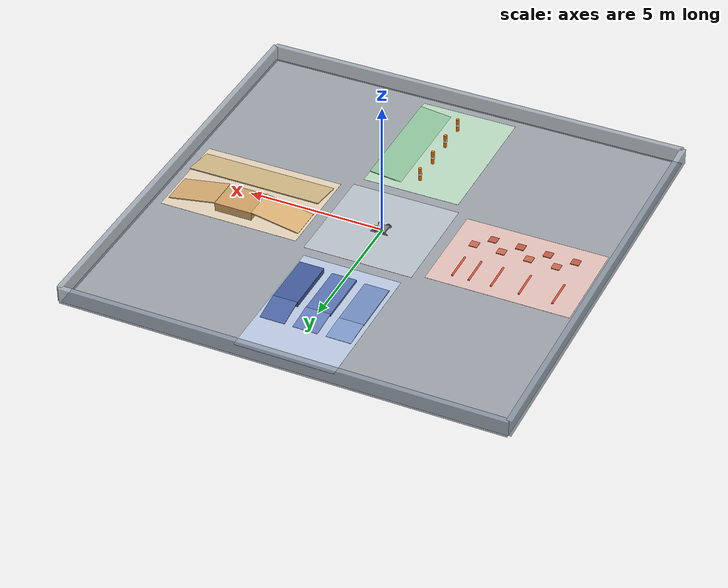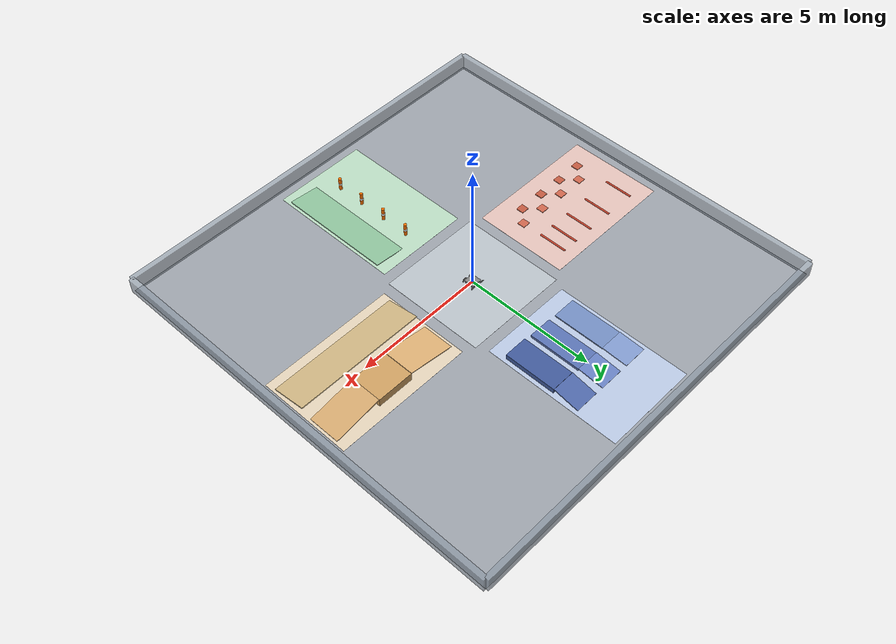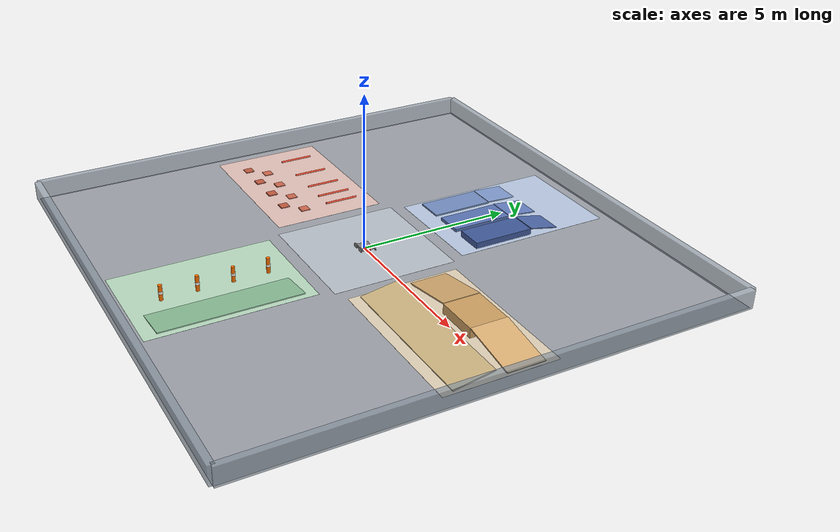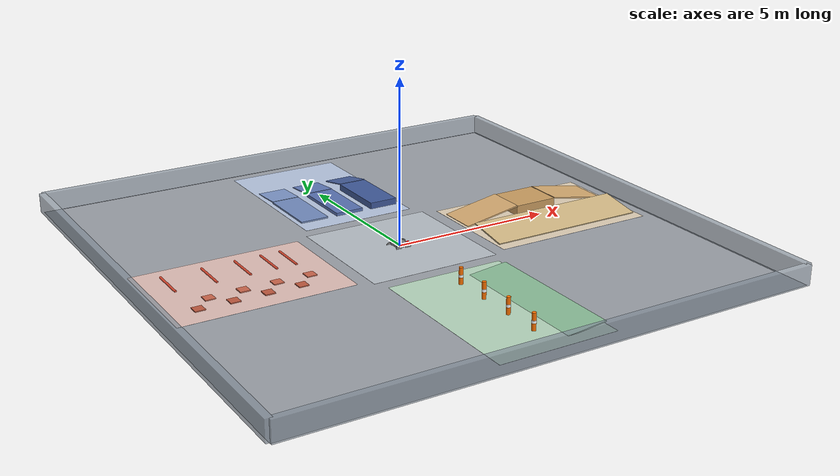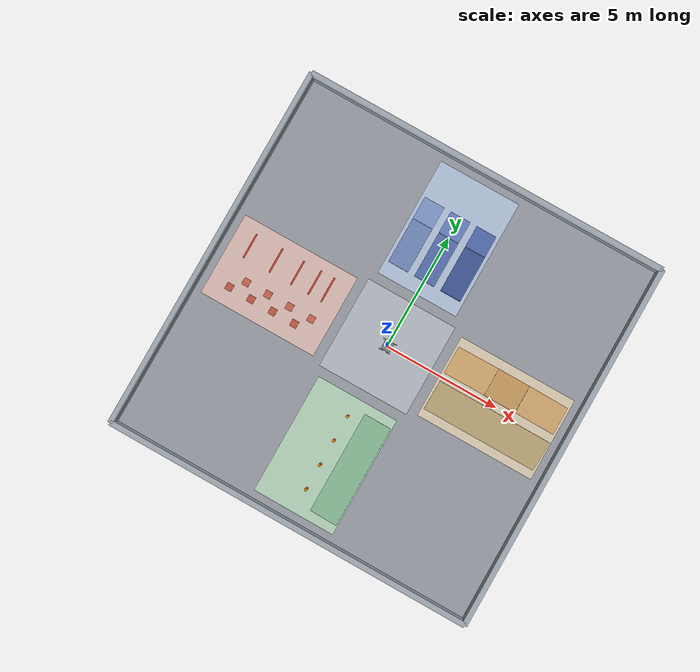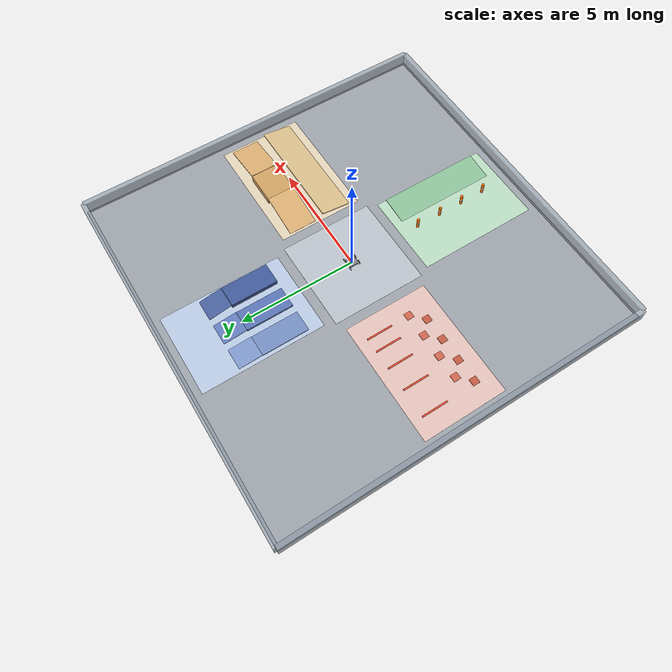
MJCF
<mujoco model="mobed_playground">
  <compiler angle="radian" eulerseq="xyz" autolimits="true" balanceinertia="true" boundinertia="1e-8" />

  <default>
    <joint armature="0.1" damping="1.0" />
  </default>

  <visual>
    <headlight ambient="0.12 0.12 0.12" diffuse="0.0 0.0 0.0" specular="0.0 0.0 0.0" />
    <quality shadowsize="4096" />
    <global offwidth="1920" offheight="1080" />
    <map shadowclip="0.5" shadowscale="0.8" />
    <rgba haze="0.15 0.25 0.35 1" />
  </visual>

  <asset>
    <mesh name="part_001_solid_001" file="meshes/part_001_solid_001.stl" scale="0.001 0.001 0.001" />
    <mesh name="part_002_solid_002" file="meshes/part_002_solid_002.stl" scale="0.001 0.001 0.001" />
    <mesh name="part_003_solid_003" file="meshes/part_003_solid_003.stl" scale="0.001 0.001 0.001" />
    <mesh name="part_004_solid_004" file="meshes/part_004_solid_004.stl" scale="0.001 0.001 0.001" />
    <mesh name="part_007_solid_007" file="meshes/part_007_solid_007.stl" scale="0.001 0.001 0.001" />
    <mesh name="part_010_solid_010" file="meshes/part_010_solid_010.stl" scale="0.001 0.001 0.001" />
    <mesh name="part_013_solid_013" file="meshes/part_013_solid_013.stl" scale="0.001 0.001 0.001" />
    <mesh name="part_005_solid_005" file="meshes/part_005_solid_005.stl" scale="0.001 0.001 0.001" />
    <mesh name="part_008_solid_008" file="meshes/part_008_solid_008.stl" scale="0.001 0.001 0.001" />
    <mesh name="part_011_solid_011" file="meshes/part_011_solid_011.stl" scale="0.001 0.001 0.001" />
    <mesh name="part_006_solid_006" file="meshes/part_006_solid_006.stl" scale="0.001 0.001 0.001" />
    <mesh name="part_009_solid_009" file="meshes/part_009_solid_009.stl" scale="0.001 0.001 0.001" />
    <mesh name="part_012_solid_012" file="meshes/part_012_solid_012.stl" scale="0.001 0.001 0.001" />

    <texture name="skybox" type="skybox" builtin="gradient" rgb1="0.35 0.55 0.75" rgb2="0.82 0.87 0.92" width="512" height="512" />
    <texture name="grid" type="2d" builtin="checker" width="512" height="512" rgb1="0.66 0.68 0.71" rgb2="0.56 0.58 0.61" />
    <material name="grid_mat" texture="grid" texrepeat="16 16" reflectance="0.08" specular="0.15" />
  </asset>

  <worldbody>
    <!-- Lighting: Studio-grade Natural Outdoor Setup -->
    <light name="sun" directional="true" pos="0 0 10" dir="0.4 0.6 -1.2" diffuse="0.68 0.68 0.65" specular="0.25 0.25 0.25" castshadow="true" />
    <light name="sky_fill" directional="true" pos="0 0 10" dir="-0.4 -0.5 -0.8" diffuse="0.24 0.26 0.30" specular="0.02 0.02 0.02" castshadow="false" />
    <light name="ground_bounce" directional="true" pos="0 0 -5" dir="0 0 1" diffuse="0.1 0.1 0.1" specular="0 0 0" castshadow="false" />

    <camera name="track_cam" mode="trackcom" pos="-1.5 0 0.8" xyaxes="0 -1 0 0.8 0 1.5" />
    <camera name="side_cam" mode="trackcom" pos="-1.3 -1.1 0.7" xyaxes="0.65 -0.76 0 0.38 0.33 0.87" />
    <camera name="overview_cam" pos="0 -10 9" xyaxes="1 0 0 0 0.7 0.7" />

    <!-- Main Floor (16m x 16m) -->
    <geom name="floor" type="plane" size="8 8 0.1" material="grid_mat" contype="1" conaffinity="1" friction="1 0.005 0.0001" />

    <!-- Perimeter Boundary Walls -->
    <geom name="wall_n" type="box" size="0.1 8.0 0.3" pos="8.0 0 0.3" rgba="0.55 0.6 0.65 0.7" contype="1" conaffinity="1" />
    <geom name="wall_s" type="box" size="0.1 8.0 0.3" pos="-8.0 0 0.3" rgba="0.55 0.6 0.65 0.7" contype="1" conaffinity="1" />
    <geom name="wall_e" type="box" size="8.0 0.1 0.3" pos="0 8.0 0.3" rgba="0.55 0.6 0.65 0.7" contype="1" conaffinity="1" />
    <geom name="wall_w" type="box" size="8.0 0.1 0.3" pos="0 -8.0 0.3" rgba="0.55 0.6 0.65 0.7" contype="1" conaffinity="1" />

    <!-- Central Staging Area Decal/Pad -->
    <geom name="plaza_pad" type="box" size="2.0 2.0 0.001" pos="0 0 0.001" rgba="0.72 0.75 0.78 1" contype="0" conaffinity="0" />

    <!-- ZONE 1: 斜坡与调平测试区 (+X: X in [2.5, 7.5])                       -->
    <!-- Zone 1 Ground Pad -->
    <geom name="z1_pad" type="box" size="2.6 1.8 0.001" pos="5.0 0 0.001" rgba="0.88 0.82 0.72 1" contype="0" conaffinity="0" />

    <!-- Track 1A: 纵向 10.2° 爬坡测试道 (Y = 0.8m) -->
    <!-- 上坡 (run=1.8m, rise=0.32m, slope=10.08°, length=1.828m) -->
    <geom name="z1_ramp_up" type="box" size="0.914 0.6 0.02" pos="3.4 0.8 0.16" euler="0 -0.176 0"
          rgba="0.85 0.68 0.45 1" contype="1" conaffinity="1" friction="1.2 0.005 0.0001" />
    <!-- 坡顶高台 (run=1.4m, height=0.32m) -->
    <geom name="z1_plateau" type="box" size="0.7 0.6 0.16" pos="5.0 0.8 0.16"
          rgba="0.8 0.62 0.38 1" contype="1" conaffinity="1" friction="1.2 0.005 0.0001" />
    <!-- 下坡 (run=1.8m, drop=0.32m, slope=10.08°) -->
    <geom name="z1_ramp_down" type="box" size="0.914 0.6 0.02" pos="6.6 0.8 0.16" euler="0 0.176 0"
          rgba="0.85 0.68 0.45 1" contype="1" conaffinity="1" friction="1.2 0.005 0.0001" />

    <!-- Track 1B: 侧向 9.5° 横滚倾斜道 (Y = -0.8m, length=5.0m, width=1.3m) -->
    <geom name="z1_side_bank" type="box" size="2.5 0.65 0.02" pos="5.0 -0.8 0.12" euler="0.165 0 0"
          rgba="0.82 0.72 0.52 1" contype="1" conaffinity="1" friction="1.2 0.005 0.0001" />

    <!-- ZONE 2: 台阶与路肩越障区 (+Y: Y in [2.5, 7.5])                       -->
    <!-- 三级越障台阶梯度：5cm、10cm、20cm                                    -->
    <!-- Zone 2 Ground Pad -->
    <geom name="z2_pad" type="box" size="1.8 2.6 0.001" pos="0 5.0 0.001" rgba="0.72 0.78 0.88 1" contype="0" conaffinity="0" />

    <!-- Lane 2A: 5cm (0.05m) 单级垂直路肩台阶 (X = -1.2m, Y in [3.0, 5.0]) -->
    <geom name="z2_curb_5cm" type="box" size="0.45 1.0 0.025" pos="-1.2 4.0 0.025"
          rgba="0.45 0.55 0.75 1" contype="1" conaffinity="1" friction="1.1 0.005 0.0001" />
    <!-- 5cm 后方缓坡下台阶 (h=0.05m, length=1.0m, slope=2.86°) -->
    <geom name="z2_curb_5cm_ramp" type="box" size="0.45 0.5 0.015" pos="-1.2 5.5 0.025" euler="-0.05 0 0"
          rgba="0.5 0.6 0.8 1" contype="1" conaffinity="1" friction="1.1 0.005 0.0001" />

    <!-- Lane 2B: 10cm (0.10m) 单级垂直路肩台阶 (X = 0.0m, Y in [3.0, 5.0]) -->
    <geom name="z2_curb_10cm" type="box" size="0.45 1.0 0.05" pos="0.0 4.0 0.05"
          rgba="0.35 0.45 0.7 1" contype="1" conaffinity="1" friction="1.1 0.005 0.0001" />
    <!-- 10cm 后方缓坡下台阶 (h=0.10m, length=1.0m, slope=5.71°) -->
    <geom name="z2_curb_10cm_ramp" type="box" size="0.45 0.5 0.015" pos="0.0 5.5 0.05" euler="-0.0997 0 0"
          rgba="0.4 0.5 0.75 1" contype="1" conaffinity="1" friction="1.1 0.005 0.0001" />

    <!-- Lane 2C: 20cm (0.20m) 单级高难度垂直台阶 (X = 1.2m, Y in [3.0, 5.0]) -->
    <geom name="z2_curb_20cm" type="box" size="0.45 1.0 0.1" pos="1.2 4.0 0.1"
          rgba="0.25 0.35 0.6 1" contype="1" conaffinity="1" friction="1.1 0.005 0.0001" />
    <!-- 20cm 后方缓坡下台阶 (h=0.20m, length=1.0m, slope=11.31°) -->
    <geom name="z2_curb_20cm_ramp" type="box" size="0.45 0.5 0.015" pos="1.2 5.5 0.1" euler="-0.1974 0 0"
          rgba="0.3 0.4 0.65 1" contype="1" conaffinity="1" friction="1.1 0.005 0.0001" />

    <!-- ZONE 3: 减速带与非对称起伏路面 (-X: X in [-7.5, -2.5])              -->
    <!-- Zone 3 Ground Pad -->
    <geom name="z3_pad" type="box" size="2.6 1.8 0.001" pos="-5.0 0 0.001" rgba="0.88 0.75 0.72 1" contype="0" conaffinity="0" />

    <!-- Track 3A: 连续减速带 (Y = 0.8m) - 半圆柱凸起 (r=3.5cm, width=1.2m) -->
    <geom name="z3_bump1" type="cylinder" size="0.035 0.55" pos="-3.2 0.8 0.015" euler="1.5708 0 0"
          rgba="0.9 0.3 0.2 1" contype="1" conaffinity="1" friction="1.2 0.005 0.0001" />
    <geom name="z3_bump2" type="cylinder" size="0.035 0.55" pos="-3.8 0.8 0.015" euler="1.5708 0 0"
          rgba="0.9 0.3 0.2 1" contype="1" conaffinity="1" friction="1.2 0.005 0.0001" />
    <geom name="z3_bump3" type="cylinder" size="0.035 0.55" pos="-4.6 0.8 0.015" euler="1.5708 0 0"
          rgba="0.9 0.3 0.2 1" contype="1" conaffinity="1" friction="1.2 0.005 0.0001" />
    <geom name="z3_bump4" type="cylinder" size="0.035 0.55" pos="-5.6 0.8 0.015" euler="1.5708 0 0"
          rgba="0.9 0.3 0.2 1" contype="1" conaffinity="1" friction="1.2 0.005 0.0001" />
    <geom name="z3_bump5" type="cylinder" size="0.035 0.55" pos="-6.8 0.8 0.015" euler="1.5708 0 0"
          rgba="0.9 0.3 0.2 1" contype="1" conaffinity="1" friction="1.2 0.005 0.0001" />

    <!-- Track 3B: 左右非对称交错颠簸路 (Y = -0.8m) - 考核导纳悬挂滤波 -->
    <!-- 左轮颠簸块 (Y = -0.55m) -->
    <geom name="z3_cobble_L1" type="box" size="0.15 0.15 0.015" pos="-3.2 -0.55 0.015"
          rgba="0.8 0.4 0.3 1" contype="1" conaffinity="1" friction="1.1 0.005 0.0001" />
    <geom name="z3_cobble_L2" type="box" size="0.15 0.15 0.015" pos="-4.2 -0.55 0.015"
          rgba="0.8 0.4 0.3 1" contype="1" conaffinity="1" friction="1.1 0.005 0.0001" />
    <geom name="z3_cobble_L3" type="box" size="0.15 0.15 0.018" pos="-5.2 -0.55 0.018"
          rgba="0.8 0.4 0.3 1" contype="1" conaffinity="1" friction="1.1 0.005 0.0001" />
    <geom name="z3_cobble_L4" type="box" size="0.15 0.15 0.015" pos="-6.2 -0.55 0.015"
          rgba="0.8 0.4 0.3 1" contype="1" conaffinity="1" friction="1.1 0.005 0.0001" />

    <!-- 右轮颠簸块 (Y = -1.05m) - 错位布置 -->
    <geom name="z3_cobble_R1" type="box" size="0.15 0.15 0.015" pos="-3.7 -1.05 0.015"
          rgba="0.75 0.35 0.25 1" contype="1" conaffinity="1" friction="1.1 0.005 0.0001" />
    <geom name="z3_cobble_R2" type="box" size="0.15 0.15 0.018" pos="-4.7 -1.05 0.018"
          rgba="0.75 0.35 0.25 1" contype="1" conaffinity="1" friction="1.1 0.005 0.0001" />
    <geom name="z3_cobble_R3" type="box" size="0.15 0.15 0.015" pos="-5.7 -1.05 0.015"
          rgba="0.75 0.35 0.25 1" contype="1" conaffinity="1" friction="1.1 0.005 0.0001" />
    <geom name="z3_cobble_R4" type="box" size="0.15 0.15 0.015" pos="-6.7 -1.05 0.015"
          rgba="0.75 0.35 0.25 1" contype="1" conaffinity="1" friction="1.1 0.005 0.0001" />

    <!-- ZONE 4: 连续绕桩与向心倾角弯道 (-Y: Y in [-7.5, -2.5])              -->
    <!-- Zone 4 Ground Pad -->
    <geom name="z4_pad" type="box" size="1.8 2.6 0.001" pos="0 -5.0 0.001" rgba="0.72 0.85 0.75 1" contype="0" conaffinity="0" />

    <!-- 绕桩桩桶 (沿 X=0 轴线性排列，间距 1.1m) -->
    <geom name="z4_pylon1" type="cylinder" size="0.06 0.25" pos="0 -3.2 0.25"
          rgba="1.0 0.45 0.0 1" contype="1" conaffinity="1" />
    <geom name="z4_pylon1_ring" type="cylinder" size="0.065 0.04" pos="0 -3.2 0.25"
          rgba="1.0 1.0 1.0 1" contype="0" conaffinity="0" />

    <geom name="z4_pylon2" type="cylinder" size="0.06 0.25" pos="0 -4.3 0.25"
          rgba="1.0 0.45 0.0 1" contype="1" conaffinity="1" />
    <geom name="z4_pylon2_ring" type="cylinder" size="0.065 0.04" pos="0 -4.3 0.25"
          rgba="1.0 1.0 1.0 1" contype="0" conaffinity="0" />

    <geom name="z4_pylon3" type="cylinder" size="0.06 0.25" pos="0 -5.4 0.25"
          rgba="1.0 0.45 0.0 1" contype="1" conaffinity="1" />
    <geom name="z4_pylon3_ring" type="cylinder" size="0.065 0.04" pos="0 -5.4 0.25"
          rgba="1.0 1.0 1.0 1" contype="0" conaffinity="0" />

    <geom name="z4_pylon4" type="cylinder" size="0.06 0.25" pos="0 -6.5 0.25"
          rgba="1.0 0.45 0.0 1" contype="1" conaffinity="1" />
    <geom name="z4_pylon4_ring" type="cylinder" size="0.065 0.04" pos="0 -6.5 0.25"
          rgba="1.0 1.0 1.0 1" contype="0" conaffinity="0" />

    <!-- 侧方倾角弯道平台 (Banked Corner Pad: X=1.1m, Y=-5.0m, 内倾 6°) -->
    <geom name="z4_banked_curve" type="box" size="0.65 2.2 0.015" pos="1.1 -5.0 0.045" euler="0 -0.105 0"
          rgba="0.55 0.75 0.6 1" contype="1" conaffinity="1" friction="1.2 0.005 0.0001" />

    <!-- ROBOT CHASSIS & MECHANISM                                           -->
    <body name="chassis" pos="0 0 0">
      <freejoint name="root" />
      <inertial pos="0.0019047851 0 0.049093719" mass="14.996783" quat="1 0 0 0" diaginertia="0.20788229 0.20788229 0.39976801" />

      <geom name="front_nose" type="box" size="0.16 0.05 0.02" pos="0.15 0 0.05" rgba="1 0 0 1" contype="0" conaffinity="0" />

      <geom name="chassis_mesh_1" type="mesh" mesh="part_001_solid_001" pos="0 0.0090937195 0.0019047852" euler="0 0 0" group="1" contype="0" conaffinity="0" />
      <body name="Steering_joint_LF" pos="0.15190479 0.15 0.0090937195" euler="0 0 1.5707963">
        <joint name="Steering_joint_LF" type="hinge" pos="0 0 0" axis="0 0 1" actuatorfrcrange="-200 200" actuatorfrclimited="true" />
        <inertial pos="0.0016718354 -2.1252266e-06 -0.028065513" mass="1.536995" quat="0.9981442 4.7558172e-05 0.060894316 -0.00020962731" diaginertia="0.00097712 0.00109524 0.00130314" />
        <geom name="Steering_joint_LF_mesh_1" type="mesh" mesh="part_002_solid_002" rgba="1 0.2 0.2 1" pos="-0.14090628 0.15190479 -0.0071889343" euler="0 0 -1.5707963" group="1" contype="0" conaffinity="0" />
        <body name="Posture_control_joint_LF" pos="0.046069665 0 -0.045" euler="-1.5707963 -1.5707963 0">
          <joint name="Posture_control_joint_LF" type="hinge" pos="0 0 0" axis="0 0 1" actuatorfrcrange="-200 200" actuatorfrclimited="true" />
          <inertial pos="-0.035491101 -0.01210916 -0.013991309" mass="1.061999" quat="0.98651643 0 0 0.16366223" diaginertia="0.00008364 0.00087668 0.00094262" />
          <geom name="Posture_control_joint_LF_mesh_1" type="mesh" mesh="part_003_solid_003" pos="0.15190479 -0.037811066 0.18697595" euler="1.5707963 0 -3.1415927" group="1" contype="0" conaffinity="0" />
          <body name="Wheel_joint_LF" pos="-0.070982202 -0.02421832 -0.018991302" euler="3.1415927 0 0">
            <joint name="Wheel_joint_LF" type="hinge" pos="0 0 0" axis="0 0 1" actuatorfrcrange="-200 200" actuatorfrclimited="true" />
            <inertial pos="1.2736975e-10 0 0.010000008" mass="0.75153473" quat="0.99861458 0 0 0.052620487" diaginertia="0.0018977931 0.001897793 0.0037454838" />
            <geom name="Wheel_joint_LF_mesh_1" type="mesh" mesh="part_004_solid_004" pos="0.22288699 0.013592745 -0.20596725" euler="-1.5707963 0 -3.1415927" group="1" contype="1" conaffinity="1" friction="1 0.005 0.0001" />
          </body>
        </body>
      </body>
      <body name="Steering_joint_RF" pos="0.15190479 -0.15 0.0090937195" euler="0 0 1.5707963">
        <joint name="Steering_joint_RF" type="hinge" pos="0 0 0" axis="0 0 1" actuatorfrcrange="-200 200" actuatorfrclimited="true" />
        <inertial pos="-0.0016718342 2.12478e-06 -0.028065513" mass="1.536995" quat="0.9981442 -4.7530235e-05 -0.060894308 -0.00020965858" diaginertia="0.00097712 0.00109524 0.00130314" />
        <geom name="Steering_joint_RF_mesh_1" type="mesh" mesh="part_007_solid_007" rgba="0.2 1 0.2 1" pos="0.15909372 0.15190479 -0.0071889343" euler="0 0 -1.5707963" group="1" contype="0" conaffinity="0" />
        <body name="Posture_control_joint_RF" pos="-0.060060967 0 -0.045" euler="1.5707963 1.5707963 0">
          <joint name="Posture_control_joint_RF" type="hinge" pos="0 0 0" axis="0 0 1" actuatorfrcrange="-200 200" actuatorfrclimited="true" />
          <inertial pos="0.0033361432 0.037351307 -7.573517e-09" mass="1.061999" quat="0.99900822 0 0 -0.044526062" diaginertia="0.00087668 0.00008364 0.00094262" />
          <geom name="Posture_control_joint_RF_mesh_1" type="mesh" mesh="part_010_solid_010" pos="0.15190479 0.037811066 0.21915469" euler="-1.5707963 0 -3.1415927" group="1" contype="0" conaffinity="0" />
          <body name="Wheel_joint_RF" pos="0.0066722838 0.074702615 -0.005" euler="-3.1415927 0 0">
            <joint name="Wheel_joint_RF" type="hinge" pos="0 0 0" axis="0 0 1" actuatorfrcrange="-200 200" actuatorfrclimited="true" />
            <inertial pos="-9.5305775e-10 -3.2682827e-10 0.010000008" mass="0.75153475" quat="0.93536482 0 0 -0.3536844" diaginertia="0.0018977931 0.0018977931 0.003745484" />
            <geom name="Wheel_joint_RF_mesh_1" type="mesh" mesh="part_013_solid_013" pos="0.1452325 0.036891549 -0.22415469" euler="1.5707963 0 -3.1415927" group="1" contype="1" conaffinity="1" friction="1 0.005 0.0001" />
          </body>
        </body>
      </body>
      <body name="Steering_joint_LB" pos="-0.14809521 0.15 0.0090937195" euler="0 0 1.5707963">
        <joint name="Steering_joint_LB" type="hinge" pos="0 0 0" axis="0 0 1" actuatorfrcrange="-200 200" actuatorfrclimited="true" />
        <inertial pos="0.0016718342 -2.1248272e-06 -0.028065513" mass="1.536995" quat="0.9981442 4.7518247e-05 0.060894305 -0.00020975219" diaginertia="0.00097712 0.00109524 0.00130314" />
        <geom name="Steering_joint_LB_mesh_1" type="mesh" mesh="part_005_solid_005" pos="-0.14090628 -0.14809521 -0.0071889343" euler="0 0 -1.5707963" group="1" contype="0" conaffinity="0" />
        <body name="Posture_control_joint_LB" pos="0.060060967 0 -0.045" euler="-1.5707963 -1.5707963 0">
          <joint name="Posture_control_joint_LB" type="hinge" pos="0 0 0" axis="0 0 1" actuatorfrcrange="-200 200" actuatorfrclimited="true" />
          <inertial pos="0.037472079 0.0014468008 -7.5886705e-09" mass="1.061999" quat="0.99981385 0 0 0.019294275" diaginertia="0.00008364 0.00087668 0.00094262" />
          <geom name="Posture_control_joint_LB_mesh_1" type="mesh" mesh="part_008_solid_008" pos="-0.14809521 -0.037811066 0.20096725" euler="1.5707963 0 -3.1415927" group="1" contype="0" conaffinity="0" />
          <body name="Wheel_joint_LB" pos="0.07494416 0.0028936022 -0.005" euler="3.1415927 0 0">
            <joint name="Wheel_joint_LB" type="hinge" pos="0 0 0" axis="0 0 1" actuatorfrcrange="-200 200" actuatorfrclimited="true" />
            <inertial pos="0 4.5386143e-10 0.010000008" mass="0.75153474" quat="0.93171755 0 0 -0.36318371" diaginertia="0.0018977931 0.001897793 0.0037454838" />
            <geom name="Wheel_joint_LB_mesh_1" type="mesh" mesh="part_011_solid_011" pos="-0.22303937 0.040704668 -0.20596725" euler="-1.5707963 0 -3.1415927" group="1" contype="1" conaffinity="1" friction="1 0.005 0.0001" />
          </body>
        </body>
      </body>
      <body name="Steering_joint_RB" pos="-0.14809521 -0.15 0.0090937195" euler="0 0 1.5707963">
        <joint name="Steering_joint_RB" type="hinge" pos="0 0 0" axis="0 0 1" actuatorfrcrange="-200 200" actuatorfrclimited="true" />
        <inertial pos="-0.0016718354 2.1246811e-06 -0.028065513" mass="1.536995" quat="0.9981442 -4.756718e-05 -0.06089431 -0.00020963633" diaginertia="0.00097712 0.00109524 0.00130314" />
        <geom name="Steering_joint_RB_mesh_1" type="mesh" mesh="part_006_solid_006" pos="0.15909372 -0.14809521 -0.0071889343" euler="0 0 -1.5707963" group="1" contype="0" conaffinity="0" />
        <body name="Posture_control_joint_RB" pos="-0.060060967 0 -0.045" euler="1.5707963 1.5707963 0">
          <joint name="Posture_control_joint_RB" type="hinge" pos="0 0 0" axis="0 0 1" actuatorfrcrange="-200 200" actuatorfrclimited="true" />
          <inertial pos="0.0035230026 0.037334146 -7.5735161e-09" mass="1.061999" quat="0.99889369 0 0 -0.047025398" diaginertia="0.00087668 0.00008364 0.00094262" />
          <geom name="Posture_control_joint_RB_mesh_1" type="mesh" mesh="part_009_solid_009" pos="-0.14809521 0.037811066 0.21915469" euler="-1.5707963 0 -3.1415927" group="1" contype="0" conaffinity="0" />
          <body name="Wheel_joint_RB" pos="0.0070460026 0.074668292 -0.005" euler="-3.1415927 0 0">
            <joint name="Wheel_joint_RB" type="hinge" pos="0 0 0" axis="0 0 1" actuatorfrcrange="-200 200" actuatorfrclimited="true" />
            <inertial pos="-1.2465447e-09 -5.7382597e-10 0.010000008" mass="0.75153475" quat="0.99454652 0 0 -0.10429394" diaginertia="0.0018977932 0.0018977931 0.003745484" />
            <geom name="Wheel_joint_RB_mesh_1" type="mesh" mesh="part_012_solid_012" pos="-0.15514122 0.036857226 -0.22415469" euler="1.5707963 0 -3.1415927" group="1" contype="1" conaffinity="1" friction="1 0.005 0.0001" />
          </body>
        </body>
      </body>
    </body>
  </worldbody>

  <keyframe>
    <key name="home" qpos="0 0 0.35 1 0 0 0 -0.0000 -1.9164 -3.5443 0.1599 -3.0159 1.8035 -0.0013 1.5080 4.1867 -0.0069 -3.0474 -0.7472" />
  </keyframe>

  <actuator>
    <position name="act_steer_FL" joint="Steering_joint_LF" kp="300" kv="30" ctrllimited="true" ctrlrange="-3.14 3.14" />
    <position name="act_steer_FR" joint="Steering_joint_RF" kp="300" kv="30" ctrllimited="true" ctrlrange="-3.14 3.14" />
    <position name="act_steer_RL" joint="Steering_joint_LB" kp="300" kv="30" ctrllimited="true" ctrlrange="-3.14 3.14" />
    <position name="act_steer_RR" joint="Steering_joint_RB" kp="300" kv="30" ctrllimited="true" ctrlrange="-3.14 3.14" />
    <position name="act_ecc_FL" joint="Posture_control_joint_LF" kp="300" kv="30" ctrllimited="false" />
    <position name="act_ecc_FR" joint="Posture_control_joint_RF" kp="300" kv="30" ctrllimited="false" />
    <position name="act_ecc_RL" joint="Posture_control_joint_LB" kp="300" kv="30" ctrllimited="false" />
    <position name="act_ecc_RR" joint="Posture_control_joint_RB" kp="300" kv="30" ctrllimited="false" />
    <velocity name="act_wheel_FL" joint="Wheel_joint_LF" kv="10" ctrllimited="true" ctrlrange="-50 50" />
    <velocity name="act_wheel_FR" joint="Wheel_joint_RF" kv="10" ctrllimited="true" ctrlrange="-50 50" />
    <velocity name="act_wheel_RL" joint="Wheel_joint_LB" kv="10" ctrllimited="true" ctrlrange="-50 50" />
    <velocity name="act_wheel_RR" joint="Wheel_joint_RB" kv="10" ctrllimited="true" ctrlrange="-50 50" />
  </actuator>
</mujoco>
